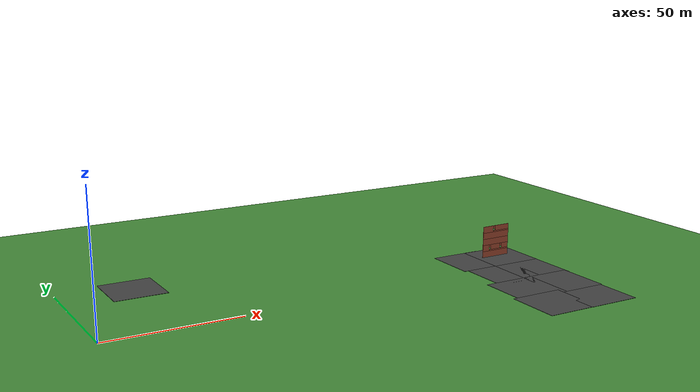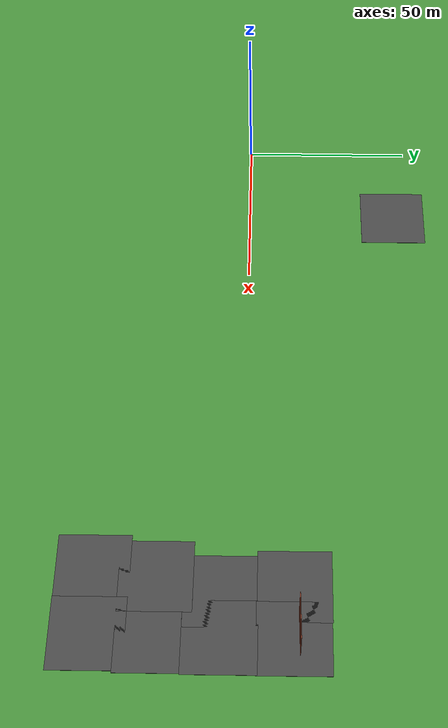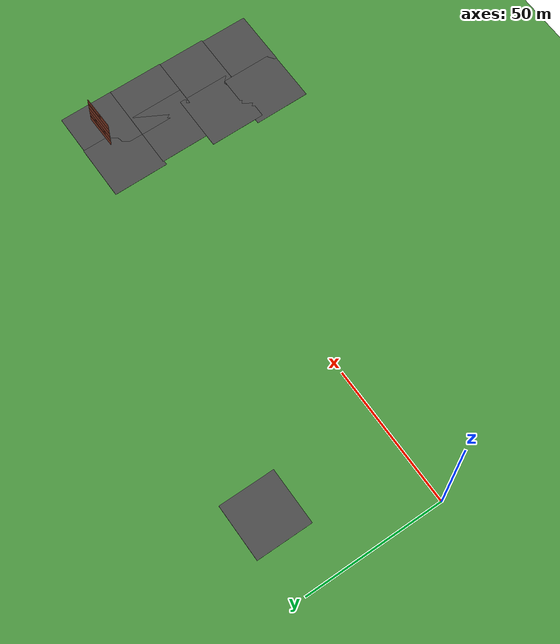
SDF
<sdf version="1.7">
 <world name="default">
  <model name="ground_plane">
   <static>1</static>
   <link name="link">
    <collision name="collision">
     <geometry><plane><normal>0 0 1</normal><size>100 100</size></plane></geometry>
     <surface>
      <contact><collide_bitmask>65535</collide_bitmask></contact>
      <friction><ode><mu>100</mu><mu2>50</mu2></ode></friction>
     </surface>
    </collision>
    <visual name="grass">
     <pose>0 0 -0.1 0 -0 0</pose>
     <cast_shadows>0</cast_shadows>
     <geometry><plane><normal>0 0 1</normal><size>1000 1000</size></plane></geometry>
     <material>
      <script><uri>file://media/materials/scripts/gazebo.material</uri><name>Gazebo/Grass</name></script>
     </material>
    </visual>
   </link>
  </model>
  <model name="asphalt_plane">
   <static>1</static>
   <link name="link">
    <collision name="collision"><geometry><box><size>20 20 0.1</size></box></geometry></collision>
    <visual name="visual">
     <cast_shadows>0</cast_shadows>
     <geometry><box><size>20 20 0.1</size></box></geometry>
     <material>
      <script>
       <uri>model://asphalt_plane/materials/scripts</uri>
       <uri>model://asphalt_plane/materials/textures</uri>
       <name>vrc/asphalt</name>
      </script>
     </material>
    </visual>
   </link>
   <pose>26.7323 45.4974 0 0 -0 0</pose>
  </model>
  <model name="asphalt_plane_15_clone_3_clone">
   <static>1</static>
   <link name="link">
    <collision name="collision"><geometry><box><size>20 20 0.1</size></box></geometry></collision>
    <visual name="visual">
     <cast_shadows>0</cast_shadows>
     <geometry><box><size>20 20 0.1</size></box></geometry>
     <material>
      <script>
       <uri>model://asphalt_plane/materials/scripts</uri>
       <uri>model://asphalt_plane/materials/textures</uri>
       <name>vrc/asphalt</name>
      </script>
     </material>
    </visual>
   </link>
   <pose>152.616 14.179 0 0 -0 0</pose>
  </model>
  <model name="asphalt_plane_15_clone_3_clone_0">
   <static>1</static>
   <link name="link">
    <collision name="collision"><geometry><box><size>20 20 0.1</size></box></geometry></collision>
    <visual name="visual">
     <cast_shadows>0</cast_shadows>
     <geometry><box><size>20 20 0.1</size></box></geometry>
     <material>
      <script>
       <uri>model://asphalt_plane/materials/scripts</uri>
       <uri>model://asphalt_plane/materials/textures</uri>
       <name>vrc/asphalt</name>
      </script>
     </material>
    </visual>
   </link>
   <pose>166.88 14.0055 0 0 -0 0</pose>
  </model>
  <model name="asphalt_plane_15_clone_3_clone_1">
   <static>1</static>
   <link name="link">
    <collision name="collision"><geometry><box><size>20 20 0.1</size></box></geometry></collision>
    <visual name="visual">
     <cast_shadows>0</cast_shadows>
     <geometry><box><size>20 20 0.1</size></box></geometry>
     <material>
      <script>
       <uri>model://asphalt_plane/materials/scripts</uri>
       <uri>model://asphalt_plane/materials/textures</uri>
       <name>vrc/asphalt</name>
      </script>
     </material>
    </visual>
   </link>
   <pose>154.147 -5.42773 0 0 -0 0</pose>
  </model>
  <model name="asphalt_plane_15_clone_3_clone_2">
   <static>1</static>
   <link name="link">
    <collision name="collision"><geometry><box><size>20 20 0.1</size></box></geometry></collision>
    <visual name="visual">
     <cast_shadows>0</cast_shadows>
     <geometry><box><size>20 20 0.1</size></box></geometry>
     <material>
      <script>
       <uri>model://asphalt_plane/materials/scripts</uri>
       <uri>model://asphalt_plane/materials/textures</uri>
       <name>vrc/asphalt</name>
      </script>
     </material>
    </visual>
   </link>
   <pose>166.78 -5.45686 0 0 -0 0</pose>
  </model>
  <model name="asphalt_plane_15_clone_3_clone_3">
   <static>1</static>
   <link name="link">
    <collision name="collision"><geometry><box><size>20 20 0.1</size></box></geometry></collision>
    <visual name="visual">
     <cast_shadows>0</cast_shadows>
     <geometry><box><size>20 20 0.1</size></box></geometry>
     <material>
      <script>
       <uri>model://asphalt_plane/materials/scripts</uri>
       <uri>model://asphalt_plane/materials/textures</uri>
       <name>vrc/asphalt</name>
      </script>
     </material>
    </visual>
   </link>
   <pose>150.057 -22.8155 0 0 -0 0</pose>
  </model>
  <model name="asphalt_plane_15_clone_3_clone_4">
   <static>1</static>
   <link name="link">
    <collision name="collision"><geometry><box><size>20 20 0.1</size></box></geometry></collision>
    <visual name="visual">
     <cast_shadows>0</cast_shadows>
     <geometry><box><size>20 20 0.1</size></box></geometry>
     <material>
      <script>
       <uri>model://asphalt_plane/materials/scripts</uri>
       <uri>model://asphalt_plane/materials/textures</uri>
       <name>vrc/asphalt</name>
      </script>
     </material>
    </visual>
   </link>
   <pose>166.545 -22.7493 0 0 -0 0</pose>
  </model>
  <model name="asphalt_plane_15_clone_3_clone_5">
   <static>1</static>
   <link name="link">
    <collision name="collision"><geometry><box><size>20 20 0.1</size></box></geometry></collision>
    <visual name="visual">
     <cast_shadows>0</cast_shadows>
     <geometry><box><size>20 20 0.1</size></box></geometry>
     <material>
      <script>
       <uri>model://asphalt_plane/materials/scripts</uri>
       <uri>model://asphalt_plane/materials/textures</uri>
       <name>vrc/asphalt</name>
      </script>
     </material>
    </visual>
   </link>
   <pose>148.419 -39.8298 0 0 -0 0</pose>
  </model>
  <model name="asphalt_plane_15_clone_3_clone_6">
   <static>1</static>
   <link name="link">
    <collision name="collision"><geometry><box><size>20 20 0.1</size></box></geometry></collision>
    <visual name="visual">
     <cast_shadows>0</cast_shadows>
     <geometry><box><size>20 20 0.1</size></box></geometry>
     <material>
      <script>
       <uri>model://asphalt_plane/materials/scripts</uri>
       <uri>model://asphalt_plane/materials/textures</uri>
       <name>vrc/asphalt</name>
      </script>
     </material>
    </visual>
   </link>
   <pose>166.035 -39.9329 0 0 -0 0</pose>
  </model>
  <model name="my_building_1_clone">
   <link name="Wall_21">
    <pose>-7.30057 0 0 0 0 -1.5708</pose>
    <visual name="Wall_21_Visual">
     <pose>0 0 1.25 0 -0 0</pose>
     <geometry><box><size>12.25 0.15 2.5</size></box></geometry>
     <material>
      <script><uri>file://media/materials/scripts/gazebo.material</uri><name>Gazebo/Bricks</name></script>
      <ambient>1 1 1 1</ambient>
      <shader type="pixel"/>
     </material>
     <meta><layer>0</layer></meta>
    </visual>
    <collision name="Wall_21_Collision">
     <pose>0 0 1.25 0 -0 0</pose>
     <geometry><box><size>12.25 0.15 2.5</size></box></geometry>
     <surface>
      <friction>
       <ode><mu>1</mu><mu2>1</mu2><fdir1>0 0 0</fdir1><slip1>0</slip1><slip2>0</slip2></ode>
       <torsional>
        <coefficient>1</coefficient>
        <patch_radius>0</patch_radius>
        <surface_radius>0</surface_radius>
        <use_patch_radius>1</use_patch_radius>
        <ode><slip>0</slip></ode>
       </torsional>
      </friction>
      <bounce><restitution_coefficient>0</restitution_coefficient><threshold>1e+06</threshold></bounce>
      <contact>
       <collide_without_contact>0</collide_without_contact>
       <collide_without_contact_bitmask>1</collide_without_contact_bitmask>
       <collide_bitmask>1</collide_bitmask>
       <ode>
        <soft_cfm>0</soft_cfm>
        <soft_erp>0.2</soft_erp>
        <kp>1e+13</kp>
        <kd>1</kd>
        <max_vel>0.01</max_vel>
        <min_depth>0</min_depth>
       </ode>
       <bullet>
        <split_impulse>1</split_impulse>
        <split_impulse_penetration_threshold>-0.01</split_impulse_penetration_threshold>
        <soft_cfm>0</soft_cfm>
        <soft_erp>0.2</soft_erp>
        <kp>1e+13</kp>
        <kd>1</kd>
       </bullet>
      </contact>
     </surface>
    </collision>
   </link>
   <link name="Wall_78">
    <pose>-7.30057 0 2.5 0 0 -1.5708</pose>
    <visual name="Wall_78_Visual_1">
     <pose>1.54304 0 0.25 0 -0 0</pose>
     <geometry><box><size>9.16393 0.15 0.5</size></box></geometry>
     <material>
      <script><uri>file://media/materials/scripts/gazebo.material</uri><name>Gazebo/Bricks</name></script>
      <ambient>1 1 1 1</ambient>
      <shader type="pixel"/>
     </material>
     <meta><layer>1</layer></meta>
    </visual>
    <visual name="Wall_78_Visual_5">
     <pose>2.65451 0 1.9 0 -0 0</pose>
     <geometry><box><size>0.8 0.15 1.2</size></box></geometry>
     <material>
      <script><uri>file://media/materials/scripts/gazebo.material</uri><name>Gazebo/Bricks</name></script>
      <ambient>1 1 1 1</ambient>
      <shader type="pixel"/>
     </material>
     <meta><layer>1</layer></meta>
    </visual>
    <visual name="Wall_78_Visual_3">
     <pose>4.58976 0 1.5 0 -0 0</pose>
     <geometry><box><size>3.07049 0.15 2</size></box></geometry>
     <material>
      <script><uri>file://media/materials/scripts/gazebo.material</uri><name>Gazebo/Bricks</name></script>
      <ambient>1 1 1 1</ambient>
      <shader type="pixel"/>
     </material>
     <meta><layer>1</layer></meta>
    </visual>
    <visual name="Wall_78_Visual_4">
     <pose>-2.63893 0 1.9 0 -0 0</pose>
     <geometry><box><size>0.8 0.15 1.2</size></box></geometry>
     <material>
      <script><uri>file://media/materials/scripts/gazebo.material</uri><name>Gazebo/Bricks</name></script>
      <ambient>1 1 1 1</ambient>
      <shader type="pixel"/>
     </material>
     <meta><layer>1</layer></meta>
    </visual>
    <visual name="Wall_78_Visual_2">
     <pose>0.007793 0 1.5 0 -0 0</pose>
     <geometry><box><size>4.49344 0.15 2</size></box></geometry>
     <material>
      <script><uri>file://media/materials/scripts/gazebo.material</uri><name>Gazebo/Bricks</name></script>
      <ambient>1 1 1 1</ambient>
      <shader type="pixel"/>
     </material>
     <meta><layer>1</layer></meta>
    </visual>
    <visual name="Wall_78_Visual_0">
     <pose>-4.58196 0 1.25 0 -0 0</pose>
     <geometry><box><size>3.08607 0.15 2.5</size></box></geometry>
     <material>
      <script><uri>file://media/materials/scripts/gazebo.material</uri><name>Gazebo/Bricks</name></script>
      <ambient>1 1 1 1</ambient>
      <shader type="pixel"/>
     </material>
     <meta><layer>1</layer></meta>
    </visual>
    <collision name="Wall_78_Collision_0">
     <pose>-4.58196 0 1.25 0 -0 0</pose>
     <geometry><box><size>3.08607 0.15 2.5</size></box></geometry>
     <surface>
      <friction>
       <ode><mu>1</mu><mu2>1</mu2><fdir1>0 0 0</fdir1><slip1>0</slip1><slip2>0</slip2></ode>
       <torsional>
        <coefficient>1</coefficient>
        <patch_radius>0</patch_radius>
        <surface_radius>0</surface_radius>
        <use_patch_radius>1</use_patch_radius>
        <ode><slip>0</slip></ode>
       </torsional>
      </friction>
      <bounce><restitution_coefficient>0</restitution_coefficient><threshold>1e+06</threshold></bounce>
      <contact>
       <collide_without_contact>0</collide_without_contact>
       <collide_without_contact_bitmask>1</collide_without_contact_bitmask>
       <collide_bitmask>1</collide_bitmask>
       <ode>
        <soft_cfm>0</soft_cfm>
        <soft_erp>0.2</soft_erp>
        <kp>1e+13</kp>
        <kd>1</kd>
        <max_vel>0.01</max_vel>
        <min_depth>0</min_depth>
       </ode>
       <bullet>
        <split_impulse>1</split_impulse>
        <split_impulse_penetration_threshold>-0.01</split_impulse_penetration_threshold>
        <soft_cfm>0</soft_cfm>
        <soft_erp>0.2</soft_erp>
        <kp>1e+13</kp>
        <kd>1</kd>
       </bullet>
      </contact>
     </surface>
    </collision>
    <collision name="Wall_78_Collision_1">
     <pose>1.54304 0 0.25 0 -0 0</pose>
     <geometry><box><size>9.16393 0.15 0.5</size></box></geometry>
     <surface>
      <friction>
       <ode><mu>1</mu><mu2>1</mu2><fdir1>0 0 0</fdir1><slip1>0</slip1><slip2>0</slip2></ode>
       <torsional>
        <coefficient>1</coefficient>
        <patch_radius>0</patch_radius>
        <surface_radius>0</surface_radius>
        <use_patch_radius>1</use_patch_radius>
        <ode><slip>0</slip></ode>
       </torsional>
      </friction>
      <bounce><restitution_coefficient>0</restitution_coefficient><threshold>1e+06</threshold></bounce>
      <contact>
       <collide_without_contact>0</collide_without_contact>
       <collide_without_contact_bitmask>1</collide_without_contact_bitmask>
       <collide_bitmask>1</collide_bitmask>
       <ode>
        <soft_cfm>0</soft_cfm>
        <soft_erp>0.2</soft_erp>
        <kp>1e+13</kp>
        <kd>1</kd>
        <max_vel>0.01</max_vel>
        <min_depth>0</min_depth>
       </ode>
       <bullet>
        <split_impulse>1</split_impulse>
        <split_impulse_penetration_threshold>-0.01</split_impulse_penetration_threshold>
        <soft_cfm>0</soft_cfm>
        <soft_erp>0.2</soft_erp>
        <kp>1e+13</kp>
        <kd>1</kd>
       </bullet>
      </contact>
     </surface>
    </collision>
    <collision name="Wall_78_Collision_5">
     <pose>2.65451 0 1.9 0 -0 0</pose>
     <geometry><box><size>0.8 0.15 1.2</size></box></geometry>
     <surface>
      <friction>
       <ode><mu>1</mu><mu2>1</mu2><fdir1>0 0 0</fdir1><slip1>0</slip1><slip2>0</slip2></ode>
       <torsional>
        <coefficient>1</coefficient>
        <patch_radius>0</patch_radius>
        <surface_radius>0</surface_radius>
        <use_patch_radius>1</use_patch_radius>
        <ode><slip>0</slip></ode>
       </torsional>
      </friction>
      <bounce><restitution_coefficient>0</restitution_coefficient><threshold>1e+06</threshold></bounce>
      <contact>
       <collide_without_contact>0</collide_without_contact>
       <collide_without_contact_bitmask>1</collide_without_contact_bitmask>
       <collide_bitmask>1</collide_bitmask>
       <ode>
        <soft_cfm>0</soft_cfm>
        <soft_erp>0.2</soft_erp>
        <kp>1e+13</kp>
        <kd>1</kd>
        <max_vel>0.01</max_vel>
        <min_depth>0</min_depth>
       </ode>
       <bullet>
        <split_impulse>1</split_impulse>
        <split_impulse_penetration_threshold>-0.01</split_impulse_penetration_threshold>
        <soft_cfm>0</soft_cfm>
        <soft_erp>0.2</soft_erp>
        <kp>1e+13</kp>
        <kd>1</kd>
       </bullet>
      </contact>
     </surface>
    </collision>
    <collision name="Wall_78_Collision_3">
     <pose>4.58976 0 1.5 0 -0 0</pose>
     <geometry><box><size>3.07049 0.15 2</size></box></geometry>
     <surface>
      <friction>
       <ode><mu>1</mu><mu2>1</mu2><fdir1>0 0 0</fdir1><slip1>0</slip1><slip2>0</slip2></ode>
       <torsional>
        <coefficient>1</coefficient>
        <patch_radius>0</patch_radius>
        <surface_radius>0</surface_radius>
        <use_patch_radius>1</use_patch_radius>
        <ode><slip>0</slip></ode>
       </torsional>
      </friction>
      <bounce><restitution_coefficient>0</restitution_coefficient><threshold>1e+06</threshold></bounce>
      <contact>
       <collide_without_contact>0</collide_without_contact>
       <collide_without_contact_bitmask>1</collide_without_contact_bitmask>
       <collide_bitmask>1</collide_bitmask>
       <ode>
        <soft_cfm>0</soft_cfm>
        <soft_erp>0.2</soft_erp>
        <kp>1e+13</kp>
        <kd>1</kd>
        <max_vel>0.01</max_vel>
        <min_depth>0</min_depth>
       </ode>
       <bullet>
        <split_impulse>1</split_impulse>
        <split_impulse_penetration_threshold>-0.01</split_impulse_penetration_threshold>
        <soft_cfm>0</soft_cfm>
        <soft_erp>0.2</soft_erp>
        <kp>1e+13</kp>
        <kd>1</kd>
       </bullet>
      </contact>
     </surface>
    </collision>
    <collision name="Wall_78_Collision_4">
     <pose>-2.63893 0 1.9 0 -0 0</pose>
     <geometry><box><size>0.8 0.15 1.2</size></box></geometry>
     <surface>
      <friction>
       <ode><mu>1</mu><mu2>1</mu2><fdir1>0 0 0</fdir1><slip1>0</slip1><slip2>0</slip2></ode>
       <torsional>
        <coefficient>1</coefficient>
        <patch_radius>0</patch_radius>
        <surface_radius>0</surface_radius>
        <use_patch_radius>1</use_patch_radius>
        <ode><slip>0</slip></ode>
       </torsional>
      </friction>
      <bounce><restitution_coefficient>0</restitution_coefficient><threshold>1e+06</threshold></bounce>
      <contact>
       <collide_without_contact>0</collide_without_contact>
       <collide_without_contact_bitmask>1</collide_without_contact_bitmask>
       <collide_bitmask>1</collide_bitmask>
       <ode>
        <soft_cfm>0</soft_cfm>
        <soft_erp>0.2</soft_erp>
        <kp>1e+13</kp>
        <kd>1</kd>
        <max_vel>0.01</max_vel>
        <min_depth>0</min_depth>
       </ode>
       <bullet>
        <split_impulse>1</split_impulse>
        <split_impulse_penetration_threshold>-0.01</split_impulse_penetration_threshold>
        <soft_cfm>0</soft_cfm>
        <soft_erp>0.2</soft_erp>
        <kp>1e+13</kp>
        <kd>1</kd>
       </bullet>
      </contact>
     </surface>
    </collision>
    <collision name="Wall_78_Collision_2">
     <pose>0.007793 0 1.5 0 -0 0</pose>
     <geometry><box><size>4.49344 0.15 2</size></box></geometry>
     <surface>
      <friction>
       <ode><mu>1</mu><mu2>1</mu2><fdir1>0 0 0</fdir1><slip1>0</slip1><slip2>0</slip2></ode>
       <torsional>
        <coefficient>1</coefficient>
        <patch_radius>0</patch_radius>
        <surface_radius>0</surface_radius>
        <use_patch_radius>1</use_patch_radius>
        <ode><slip>0</slip></ode>
       </torsional>
      </friction>
      <bounce><restitution_coefficient>0</restitution_coefficient><threshold>1e+06</threshold></bounce>
      <contact>
       <collide_without_contact>0</collide_without_contact>
       <collide_without_contact_bitmask>1</collide_without_contact_bitmask>
       <collide_bitmask>1</collide_bitmask>
       <ode>
        <soft_cfm>0</soft_cfm>
        <soft_erp>0.2</soft_erp>
        <kp>1e+13</kp>
        <kd>1</kd>
        <max_vel>0.01</max_vel>
        <min_depth>0</min_depth>
       </ode>
       <bullet>
        <split_impulse>1</split_impulse>
        <split_impulse_penetration_threshold>-0.01</split_impulse_penetration_threshold>
        <soft_cfm>0</soft_cfm>
        <soft_erp>0.2</soft_erp>
        <kp>1e+13</kp>
        <kd>1</kd>
       </bullet>
      </contact>
     </surface>
    </collision>
   </link>
   <link name="Wall_82">
    <pose>-7.30057 0 5 0 0 -1.5708</pose>
    <visual name="Wall_82_Visual">
     <pose>0 0 1.25 0 -0 0</pose>
     <geometry><box><size>12.25 0.15 2.5</size></box></geometry>
     <material>
      <script><uri>file://media/materials/scripts/gazebo.material</uri><name>Gazebo/Bricks</name></script>
      <ambient>1 1 1 1</ambient>
      <shader type="pixel"/>
     </material>
     <meta><layer>2</layer></meta>
    </visual>
    <collision name="Wall_82_Collision">
     <pose>0 0 1.25 0 -0 0</pose>
     <geometry><box><size>12.25 0.15 2.5</size></box></geometry>
     <surface>
      <friction>
       <ode><mu>1</mu><mu2>1</mu2><fdir1>0 0 0</fdir1><slip1>0</slip1><slip2>0</slip2></ode>
       <torsional>
        <coefficient>1</coefficient>
        <patch_radius>0</patch_radius>
        <surface_radius>0</surface_radius>
        <use_patch_radius>1</use_patch_radius>
        <ode><slip>0</slip></ode>
       </torsional>
      </friction>
      <bounce><restitution_coefficient>0</restitution_coefficient><threshold>1e+06</threshold></bounce>
      <contact>
       <collide_without_contact>0</collide_without_contact>
       <collide_without_contact_bitmask>1</collide_without_contact_bitmask>
       <collide_bitmask>1</collide_bitmask>
       <ode>
        <soft_cfm>0</soft_cfm>
        <soft_erp>0.2</soft_erp>
        <kp>1e+13</kp>
        <kd>1</kd>
        <max_vel>0.01</max_vel>
        <min_depth>0</min_depth>
       </ode>
       <bullet>
        <split_impulse>1</split_impulse>
        <split_impulse_penetration_threshold>-0.01</split_impulse_penetration_threshold>
        <soft_cfm>0</soft_cfm>
        <soft_erp>0.2</soft_erp>
        <kp>1e+13</kp>
        <kd>1</kd>
       </bullet>
      </contact>
     </surface>
    </collision>
   </link>
   <link name="Wall_86">
    <pose>-7.30057 0 7.5 0 0 -1.5708</pose>
    <visual name="Wall_86_Visual">
     <pose>0 0 1.25 0 -0 0</pose>
     <geometry><box><size>12.25 0.15 2.5</size></box></geometry>
     <material>
      <script><uri>file://media/materials/scripts/gazebo.material</uri><name>Gazebo/Bricks</name></script>
      <ambient>1 1 1 1</ambient>
      <shader type="pixel"/>
     </material>
     <meta><layer>3</layer></meta>
    </visual>
    <collision name="Wall_86_Collision">
     <pose>0 0 1.25 0 -0 0</pose>
     <geometry><box><size>12.25 0.15 2.5</size></box></geometry>
     <surface>
      <friction>
       <ode><mu>1</mu><mu2>1</mu2><fdir1>0 0 0</fdir1><slip1>0</slip1><slip2>0</slip2></ode>
       <torsional>
        <coefficient>1</coefficient>
        <patch_radius>0</patch_radius>
        <surface_radius>0</surface_radius>
        <use_patch_radius>1</use_patch_radius>
        <ode><slip>0</slip></ode>
       </torsional>
      </friction>
      <bounce><restitution_coefficient>0</restitution_coefficient><threshold>1e+06</threshold></bounce>
      <contact>
       <collide_without_contact>0</collide_without_contact>
       <collide_without_contact_bitmask>1</collide_without_contact_bitmask>
       <collide_bitmask>1</collide_bitmask>
       <ode>
        <soft_cfm>0</soft_cfm>
        <soft_erp>0.2</soft_erp>
        <kp>1e+13</kp>
        <kd>1</kd>
        <max_vel>0.01</max_vel>
        <min_depth>0</min_depth>
       </ode>
       <bullet>
        <split_impulse>1</split_impulse>
        <split_impulse_penetration_threshold>-0.01</split_impulse_penetration_threshold>
        <soft_cfm>0</soft_cfm>
        <soft_erp>0.2</soft_erp>
        <kp>1e+13</kp>
        <kd>1</kd>
       </bullet>
      </contact>
     </surface>
    </collision>
   </link>
   <link name="Wall_90">
    <pose>-7.30057 0 10 0 0 -1.5708</pose>
    <visual name="Wall_90_Visual_1">
     <pose>2.39424 0 0.25 0 -0 0</pose>
     <geometry><box><size>7.46151 0.15 0.5</size></box></geometry>
     <material>
      <script><uri>file://media/materials/scripts/gazebo.material</uri><name>Gazebo/Bricks</name></script>
      <ambient>1 1 1 1</ambient>
      <shader type="pixel"/>
     </material>
     <meta><layer>4</layer></meta>
    </visual>
    <visual name="Wall_90_Visual_0">
     <pose>-3.73076 0 1.25 0 -0 0</pose>
     <geometry><box><size>4.78849 0.15 2.5</size></box></geometry>
     <material>
      <script><uri>file://media/materials/scripts/gazebo.material</uri><name>Gazebo/Bricks</name></script>
      <ambient>1 1 1 1</ambient>
      <shader type="pixel"/>
     </material>
     <meta><layer>4</layer></meta>
    </visual>
    <visual name="Wall_90_Visual_3">
     <pose>-0.936514 0 1.9 0 -0 0</pose>
     <geometry><box><size>0.8 0.15 1.2</size></box></geometry>
     <material>
      <script><uri>file://media/materials/scripts/gazebo.material</uri><name>Gazebo/Bricks</name></script>
      <ambient>1 1 1 1</ambient>
      <shader type="pixel"/>
     </material>
     <meta><layer>4</layer></meta>
    </visual>
    <visual name="Wall_90_Visual_2">
     <pose>2.79424 0 1.5 0 -0 0</pose>
     <geometry><box><size>6.66151 0.15 2</size></box></geometry>
     <material>
      <script><uri>file://media/materials/scripts/gazebo.material</uri><name>Gazebo/Bricks</name></script>
      <ambient>1 1 1 1</ambient>
      <shader type="pixel"/>
     </material>
     <meta><layer>4</layer></meta>
    </visual>
    <collision name="Wall_90_Collision_0">
     <pose>-3.73076 0 1.25 0 -0 0</pose>
     <geometry><box><size>4.78849 0.15 2.5</size></box></geometry>
     <surface>
      <friction>
       <ode><mu>1</mu><mu2>1</mu2><fdir1>0 0 0</fdir1><slip1>0</slip1><slip2>0</slip2></ode>
       <torsional>
        <coefficient>1</coefficient>
        <patch_radius>0</patch_radius>
        <surface_radius>0</surface_radius>
        <use_patch_radius>1</use_patch_radius>
        <ode><slip>0</slip></ode>
       </torsional>
      </friction>
      <bounce><restitution_coefficient>0</restitution_coefficient><threshold>1e+06</threshold></bounce>
      <contact>
       <collide_without_contact>0</collide_without_contact>
       <collide_without_contact_bitmask>1</collide_without_contact_bitmask>
       <collide_bitmask>1</collide_bitmask>
       <ode>
        <soft_cfm>0</soft_cfm>
        <soft_erp>0.2</soft_erp>
        <kp>1e+13</kp>
        <kd>1</kd>
        <max_vel>0.01</max_vel>
        <min_depth>0</min_depth>
       </ode>
       <bullet>
        <split_impulse>1</split_impulse>
        <split_impulse_penetration_threshold>-0.01</split_impulse_penetration_threshold>
        <soft_cfm>0</soft_cfm>
        <soft_erp>0.2</soft_erp>
        <kp>1e+13</kp>
        <kd>1</kd>
       </bullet>
      </contact>
     </surface>
    </collision>
    <collision name="Wall_90_Collision_1">
     <pose>2.39424 0 0.25 0 -0 0</pose>
     <geometry><box><size>7.46151 0.15 0.5</size></box></geometry>
     <surface>
      <friction>
       <ode><mu>1</mu><mu2>1</mu2><fdir1>0 0 0</fdir1><slip1>0</slip1><slip2>0</slip2></ode>
       <torsional>
        <coefficient>1</coefficient>
        <patch_radius>0</patch_radius>
        <surface_radius>0</surface_radius>
        <use_patch_radius>1</use_patch_radius>
        <ode><slip>0</slip></ode>
       </torsional>
      </friction>
      <bounce><restitution_coefficient>0</restitution_coefficient><threshold>1e+06</threshold></bounce>
      <contact>
       <collide_without_contact>0</collide_without_contact>
       <collide_without_contact_bitmask>1</collide_without_contact_bitmask>
       <collide_bitmask>1</collide_bitmask>
       <ode>
        <soft_cfm>0</soft_cfm>
        <soft_erp>0.2</soft_erp>
        <kp>1e+13</kp>
        <kd>1</kd>
        <max_vel>0.01</max_vel>
        <min_depth>0</min_depth>
       </ode>
       <bullet>
        <split_impulse>1</split_impulse>
        <split_impulse_penetration_threshold>-0.01</split_impulse_penetration_threshold>
        <soft_cfm>0</soft_cfm>
        <soft_erp>0.2</soft_erp>
        <kp>1e+13</kp>
        <kd>1</kd>
       </bullet>
      </contact>
     </surface>
    </collision>
    <collision name="Wall_90_Collision_2">
     <pose>2.79424 0 1.5 0 -0 0</pose>
     <geometry><box><size>6.66151 0.15 2</size></box></geometry>
     <surface>
      <friction>
       <ode><mu>1</mu><mu2>1</mu2><fdir1>0 0 0</fdir1><slip1>0</slip1><slip2>0</slip2></ode>
       <torsional>
        <coefficient>1</coefficient>
        <patch_radius>0</patch_radius>
        <surface_radius>0</surface_radius>
        <use_patch_radius>1</use_patch_radius>
        <ode><slip>0</slip></ode>
       </torsional>
      </friction>
      <bounce><restitution_coefficient>0</restitution_coefficient><threshold>1e+06</threshold></bounce>
      <contact>
       <collide_without_contact>0</collide_without_contact>
       <collide_without_contact_bitmask>1</collide_without_contact_bitmask>
       <collide_bitmask>1</collide_bitmask>
       <ode>
        <soft_cfm>0</soft_cfm>
        <soft_erp>0.2</soft_erp>
        <kp>1e+13</kp>
        <kd>1</kd>
        <max_vel>0.01</max_vel>
        <min_depth>0</min_depth>
       </ode>
       <bullet>
        <split_impulse>1</split_impulse>
        <split_impulse_penetration_threshold>-0.01</split_impulse_penetration_threshold>
        <soft_cfm>0</soft_cfm>
        <soft_erp>0.2</soft_erp>
        <kp>1e+13</kp>
        <kd>1</kd>
       </bullet>
      </contact>
     </surface>
    </collision>
    <collision name="Wall_90_Collision_3">
     <pose>-0.936514 0 1.9 0 -0 0</pose>
     <geometry><box><size>0.8 0.15 1.2</size></box></geometry>
     <surface>
      <friction>
       <ode><mu>1</mu><mu2>1</mu2><fdir1>0 0 0</fdir1><slip1>0</slip1><slip2>0</slip2></ode>
       <torsional>
        <coefficient>1</coefficient>
        <patch_radius>0</patch_radius>
        <surface_radius>0</surface_radius>
        <use_patch_radius>1</use_patch_radius>
        <ode><slip>0</slip></ode>
       </torsional>
      </friction>
      <bounce><restitution_coefficient>0</restitution_coefficient><threshold>1e+06</threshold></bounce>
      <contact>
       <collide_without_contact>0</collide_without_contact>
       <collide_without_contact_bitmask>1</collide_without_contact_bitmask>
       <collide_bitmask>1</collide_bitmask>
       <ode>
        <soft_cfm>0</soft_cfm>
        <soft_erp>0.2</soft_erp>
        <kp>1e+13</kp>
        <kd>1</kd>
        <max_vel>0.01</max_vel>
        <min_depth>0</min_depth>
       </ode>
       <bullet>
        <split_impulse>1</split_impulse>
        <split_impulse_penetration_threshold>-0.01</split_impulse_penetration_threshold>
        <soft_cfm>0</soft_cfm>
        <soft_erp>0.2</soft_erp>
        <kp>1e+13</kp>
        <kd>1</kd>
       </bullet>
      </contact>
     </surface>
    </collision>
   </link>
   <static>1</static>
   <pose>165.249 22.7467 0 0 -0 1.58902</pose>
  </model>
 </world>
</sdf>
